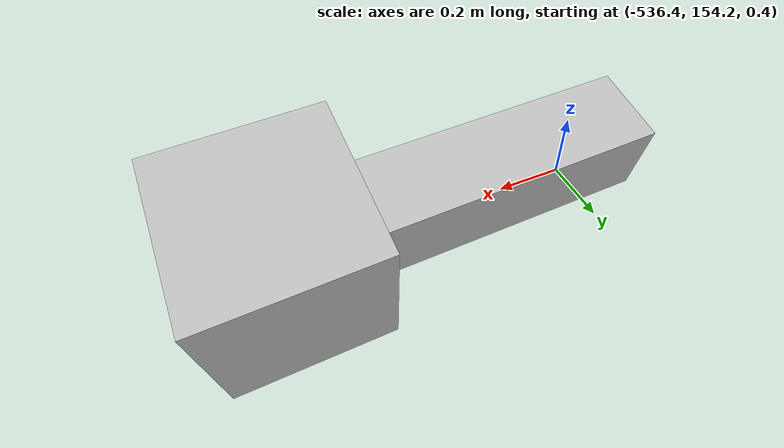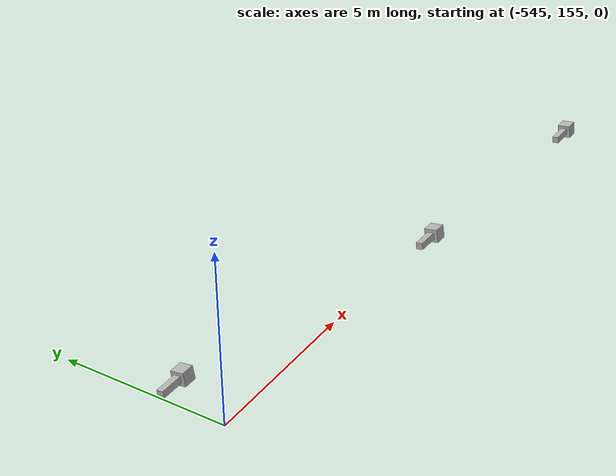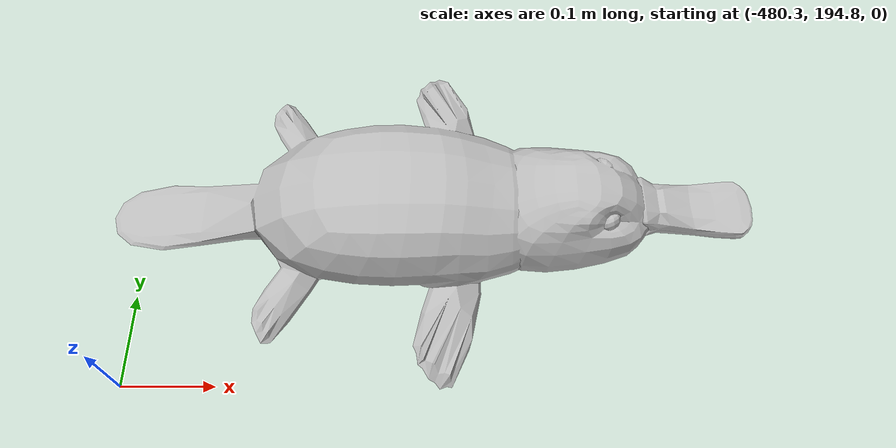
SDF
<sdf version="1.6">
 <world name="robotx_example_course">
  <spherical_coordinates>
   <surface_model>EARTH_WGS84</surface_model>
   <world_frame_orientation>ENU</world_frame_orientation>
   <latitude_deg>-33.724223</latitude_deg>
   <longitude_deg>150.679736</longitude_deg>
   <elevation>0.0</elevation>
   <heading_deg>0.0</heading_deg>
  </spherical_coordinates>
  <include><uri>model://sun</uri></include>
  <include>
   <name>post_0</name>
   <pose>-535.916809 154.362869 0.675884 -0.17182 0.030464 -0.005286</pose>
   <uri>model://post</uri>
  </include>
  <include>
   <name>post_1</name>
   <pose>-527.48999 153.854782 0.425844 -0.1365 0  0</pose>
   <uri>model://post</uri>
  </include>
  <include>
   <name>post_2</name>
   <pose>-544.832825 156.671951 0.499025 -0.162625 0 0</pose>
   <uri>model://post</uri>
  </include>
  <include>
   <name>blue_projectile</name>
   <pose>-545 60 0.03 0 0 0</pose>
   <uri>model://blue_projectile</uri>
  </include>
  <plugin filename="libusv_gazebo_wind_plugin.so" name="wind">
   <wind_obj>
    <name>wamv</name>
    <link_name>wamv/base_link</link_name>
    <coeff_vector>.5 .5 .33</coeff_vector>
   </wind_obj>
   <wind_direction>340</wind_direction>
   <wind_mean_velocity>7.1</wind_mean_velocity>
   <var_wind_gain_constants>3.5</var_wind_gain_constants>
   <var_wind_time_constants>2</var_wind_time_constants>
   <random_seed>19</random_seed>
   <update_rate>10</update_rate>
   <topic_wind_speed>/vrx/debug/wind/speed</topic_wind_speed>
   <topic_wind_direction>/vrx/debug/wind/direction</topic_wind_direction>
  </plugin>
  <scene>
   <sky><clouds><speed>12</speed></clouds></sky>
   <grid>0</grid>
   <origin_visual>0</origin_visual>
   <type>linear</type>
   <color>0.7 0.7 0.7 1</color>
   <density>0.1</density>
   <ambient>0.3 0.3 0.3 1</ambient>
  </scene>
  <model name="crocodile_moving">
   <pose>-500 190 0 0 0 0</pose>
   <include>
    <name>crocodile_buoy</name>
    <uri>model://crocodile_static</uri>
    <plugin filename="libfollow_plugin.so" name="CrocodileFollowPlugin">
     <link_name>link</link_name>
     <loop_forever>true</loop_forever>
     <line><direction>-0.52</direction><length>7</length></line>
    </plugin>
   </include>
  </model>
  <model name="platypus_moving">
   <pose>-480 195 0 0 0 0</pose>
   <include>
    <name>platypus_buoy</name>
    <uri>model://platypus_static</uri>
    <plugin filename="libfollow_plugin.so" name="PlatypusFollowPlugin">
     <link_name>link</link_name>
     <loop_forever>true</loop_forever>
     <line><direction>0.52</direction><length>3</length></line>
    </plugin>
   </include>
  </model>
  <plugin filename="libwildlife_scoring_plugin.so" name="wildlife_scoring_plugin">
   <vehicle>wamv</vehicle>
   <task_name>wildlife</task_name>
   <initial_state_duration>10.0</initial_state_duration>
   <ready_state_duration>10.0</ready_state_duration>
   <running_state_duration>300</running_state_duration>
   <collision_buffer>10</collision_buffer>
   <release_joints>
    <joint><name>wamv_external_pivot_joint</name></joint>
    <joint><name>wamv_external_riser</name></joint>
   </release_joints>
   <buoys>
    <buoy>
     <model_name>crocodile_moving</model_name>
     <link_name>crocodile_buoy::link</link_name>
     <goal>avoid</goal>
    </buoy>
    <buoy>
     <model_name>platypus_moving</model_name>
     <link_name>platypus_buoy::link</link_name>
     <goal>circumnavigate_clockwise</goal>
    </buoy>
    <buoy>
     <model_name>turtle_moving</model_name>
     <link_name>turtle_buoy::link</link_name>
     <goal>circumnavigate_counterclockwise</goal>
    </buoy>
   </buoys>
   <engagement_distance>10.0</engagement_distance>
   <time_bonus>30.0</time_bonus>
   <animals_topic>/vrx/wildlife/animals/poses</animals_topic>
  </plugin>
 </world>
</sdf>

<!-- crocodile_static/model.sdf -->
<sdf version="1.6">
  <model name="crocodile_buoy">
    <link name="link">
      <inertial>
        <pose>0 0 -2 0 0 0</pose>
        <!-- Mass determined based on buoyancy geometry so object
             floats at mid-point of sphere -->
        <mass>20</mass>
        <!-- Mark only - based on cylinder -->
        <inertia>
          <ixx>1.0</ixx>
          <ixy>0</ixy>
          <ixz>0</ixz>
          <iyy>1.0</iyy>
          <iyz>0</iyz>
          <izz>0.1</izz>
        </inertia>
      </inertial>
      <collision name="crocodile_collision">
        <pose>0 0 0.06 0 0 0</pose>
        <geometry>
          <box>
            <size>0.80 0.40 0.15</size>
          </box>
        </geometry>
      </collision>
      <visual name="crocodile_visual">
        <geometry>
	        <mesh><uri>model://crocodile_buoy/meshes/crocodile.dae</uri></mesh>
        </geometry>
      </visual>
    </link>
    <plugin name="CrocodileBuoyancyPlugin" filename="libbuoyancy_gazebo_plugin.so">
      <wave_model>ocean_waves</wave_model>
      <fluid_density>1000</fluid_density>
      <fluid_level>0.0</fluid_level>
      <linear_drag>25.0</linear_drag>
      <angular_drag>2.0</angular_drag>
      <buoyancy name="buoyancy_sphere">
        <link_name>link</link_name>
        <pose>0 0 0.2 0 0 0</pose>
        <geometry>
          <sphere>
            <radius>0.325</radius>
          </sphere>
        </geometry>
      </buoyancy>
    </plugin>
  </model>
</sdf>

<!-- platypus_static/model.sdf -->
<sdf version="1.6">
  <model name="platypus_static">
    <link name="link">
      <inertial>
        <pose>0 0 -2 0 0 0</pose>
        <!-- Mass determined based on buoyancy geometry so object
             floats at mid-point of sphere -->
        <mass>20</mass>
        <!-- Mark only - based on cylinder -->
        <inertia>
          <ixx>1.0</ixx>
          <ixy>0</ixy>
          <ixz>0</ixz>
          <iyy>1.0</iyy>
          <iyz>0</iyz>
          <izz>0.1</izz>
        </inertia>
      </inertial>
      <collision name="platypus_collision">
        <pose>0.02 0 0.05 0 0 0</pose>
        <geometry>
          <box>
            <size>0.75 0.35 0.16</size>
          </box>
        </geometry>
      </collision>
      <visual name="platypus_visual">
        <geometry>
	        <mesh><uri>model://platypus_buoy/meshes/platypus.dae</uri></mesh>
        </geometry>
      </visual>
    </link>
    <plugin name="PlatypusBuoyancyPlugin" filename="libbuoyancy_gazebo_plugin.so">
      <wave_model>ocean_waves</wave_model>
      <fluid_density>1000</fluid_density>
      <fluid_level>0.0</fluid_level>
      <linear_drag>25.0</linear_drag>
      <angular_drag>2.0</angular_drag>
      <buoyancy name="buoyancy_sphere">
        <link_name>link</link_name>
        <pose>0 0 0.2 0 0 0</pose>
        <geometry>
          <sphere>
            <radius>0.325</radius>
          </sphere>
        </geometry>
      </buoyancy>
    </plugin>
  </model>
</sdf>

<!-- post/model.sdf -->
<sdf version="1.6">
  <model name="post">
    <static>true</static>
    <pose>0 0 0 0 0 0</pose>
    <link name="base_link">
      <visual name="visual_1">
        <geometry>
          <box>
            <size>1 0.2 0.2</size>
          </box>
        </geometry>
      </visual>
      <visual name="visual_2">
        <pose>0.4 0 0 0 0 0</pose>
        <geometry>
          <box>
            <size>0.4 0.4 0.4</size>
          </box>
        </geometry>
      </visual>
      <collision name="collision">
        <pose>0 0 0.5 0 0 0</pose>
        <geometry>
          <box>
            <size>1 0.2 1</size>
          </box>
        </geometry>
      </collision>
    </link>
  </model>
</sdf>

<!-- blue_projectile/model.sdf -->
<sdf version="1.6">
  <model name="blue_projectile">
    <link name="link">
      <inertial>
        <mass>0.04</mass>
        <!-- Mark only - based on cylinder -->
        <inertia>
          <ixx>0.00002166</ixx>
          <ixy>0</ixy>
          <ixz>0</ixz>
          <iyy>00002166</iyy>
          <iyz>0</iyz>
          <izz>00002166</izz>
        </inertia>
      </inertial>
      <collision name="collision">
        <geometry>
          <sphere>
            <radius>0.0285</radius>
          </sphere>
        </geometry>
      </collision>
      <visual name="visual">
        <geometry>
	        <sphere>
            <radius>0.0285</radius>
          </sphere>
        </geometry>
        <material>
          <script>
            <uri>model://blue_projectile/materials/scripts/blue_projectile.material</uri>
            <name>blue_projectile/Blue</name>
          </script>
        </material>
      </visual>
    </link>
    <plugin name="BuoyancyPlugin" filename="libbuoyancy_gazebo_plugin.so">
      <wave_model>ocean_waves</wave_model>
      <fluid_density>1000</fluid_density>
      <fluid_level>0.0</fluid_level>
      <linear_drag>25.0</linear_drag>
      <angular_drag>2.0</angular_drag>
      <buoyancy name="buoyancy_sphere">
        <link_name>link</link_name>
        <pose>0 0 -0.02 0 0 0</pose>
        <geometry>
          <sphere>
            <radius>0.0285</radius>
          </sphere>
        </geometry>
      </buoyancy>
    </plugin>
  </model>
</sdf>
